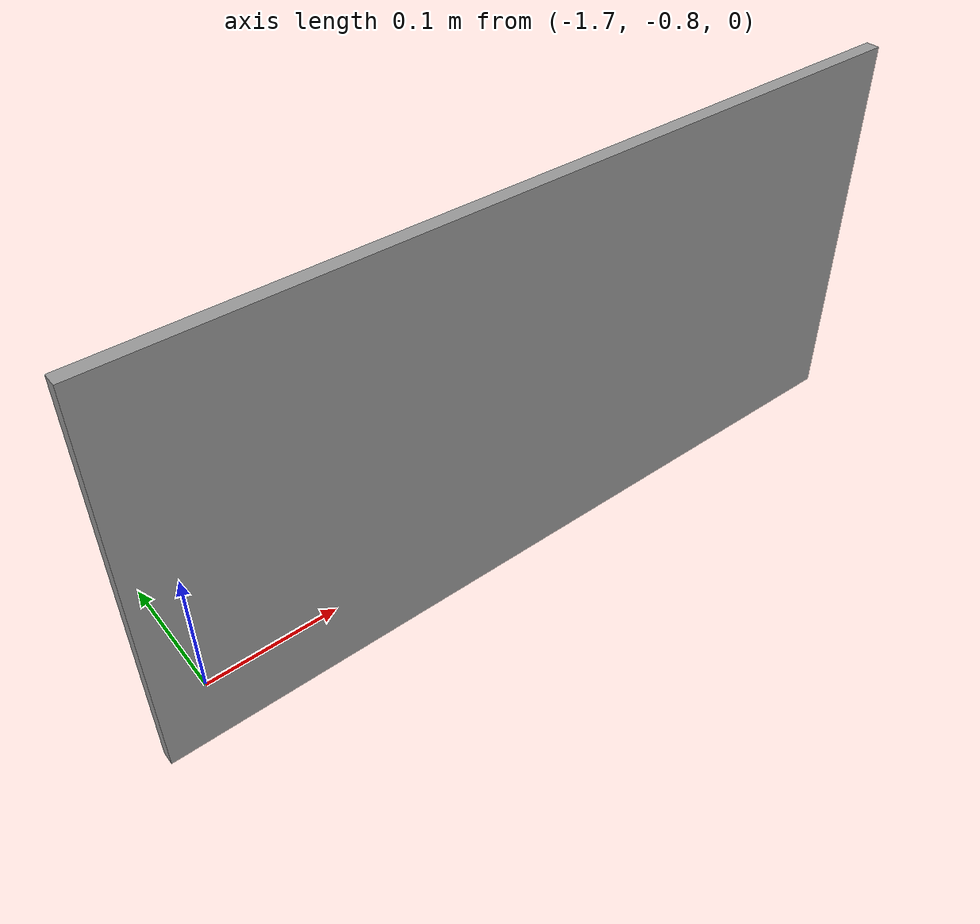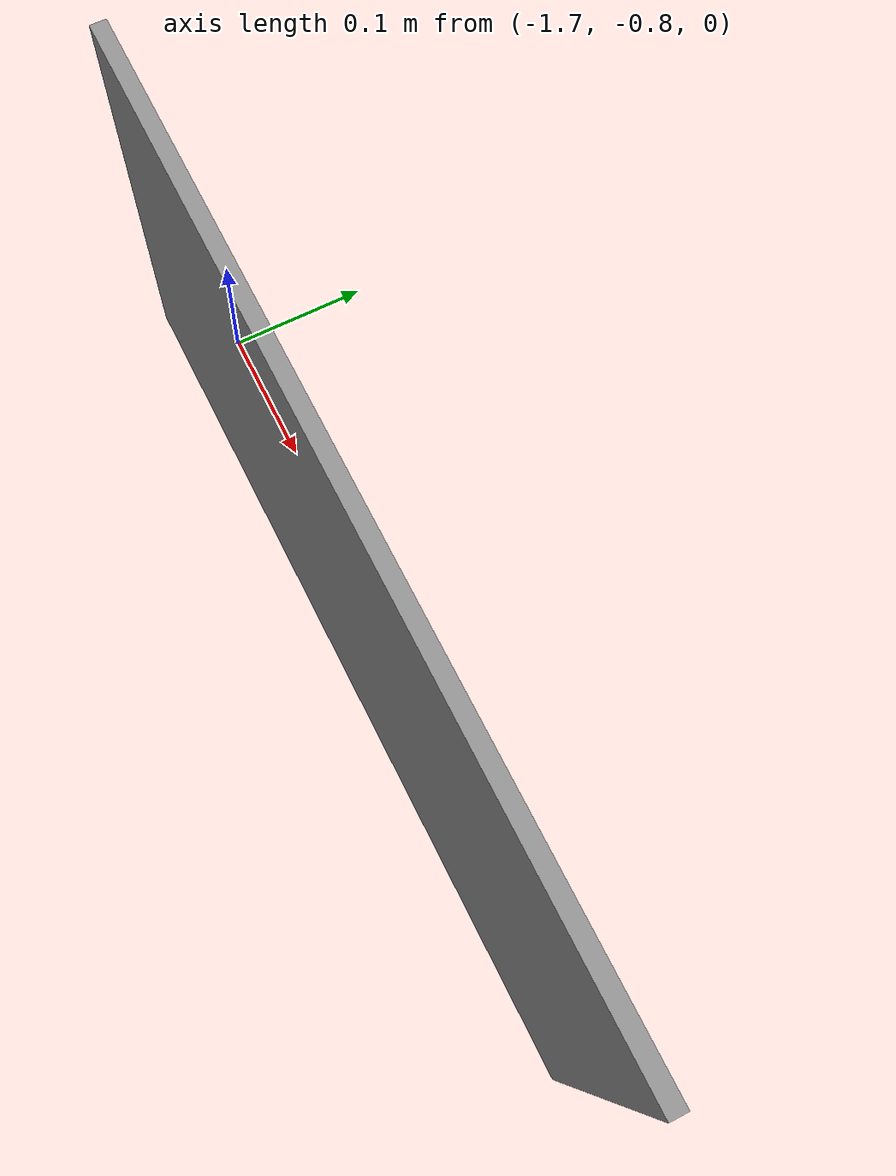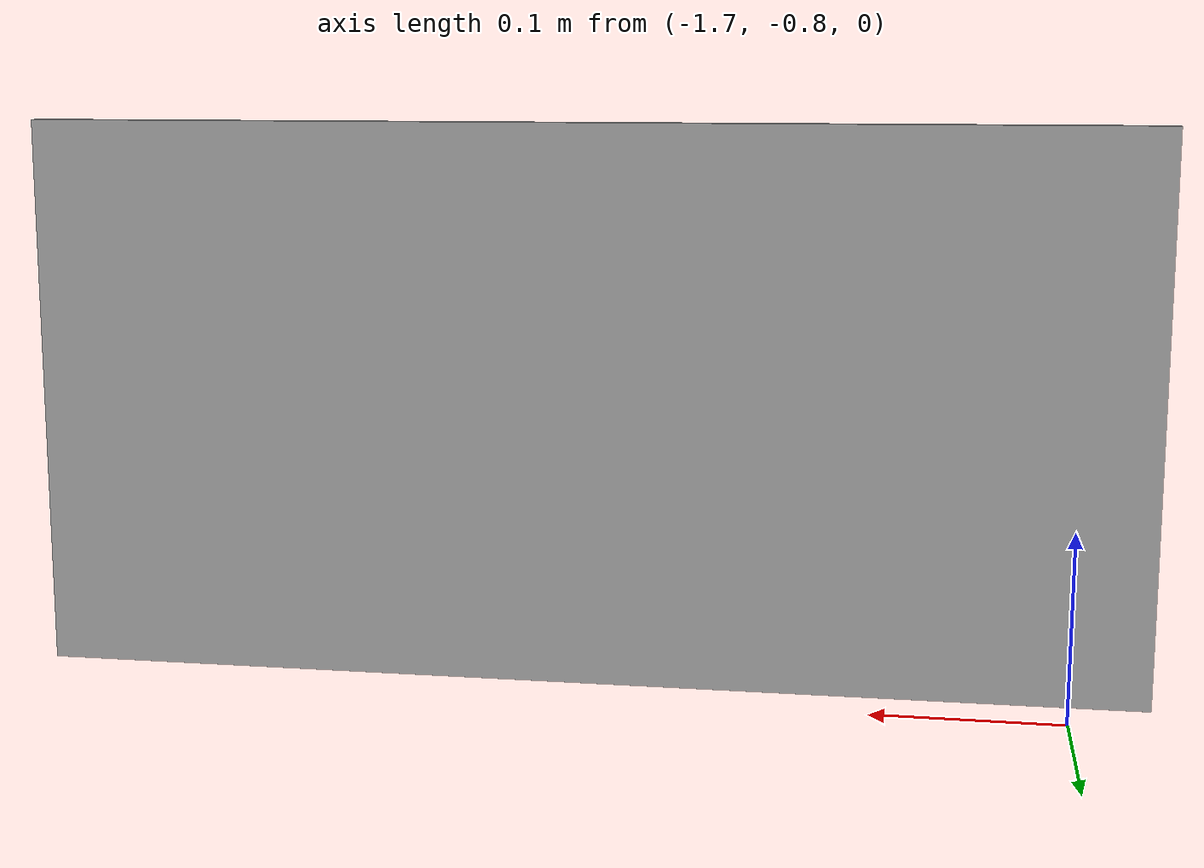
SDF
<?xml version='1.0'?>
<sdf version='1.7'>
  <model name='6'>
    <pose>-0.872065 -0.419891 0 0 -0 0</pose>
    <link name='Wall_35'>
      <collision name='Wall_35_Collision'>
        <geometry>
          <box>
            <size>0.6 0.01 0.3</size>
          </box>
        </geometry>
        <pose>0 0 0.15 0 -0 0</pose>
      </collision>
      <visual name='Wall_35_Visual'>
        <pose>0 0 0.15 0 -0 0</pose>
        <geometry>
          <box>
            <size>0.6 0.01 0.3</size>
          </box>
        </geometry>
        <material>
          <script>
            <uri>file://media/materials/scripts/gazebo.material</uri>
            <name>Gazebo/Grey</name>
          </script>
          <ambient>1 1 1 1</ambient>
        </material>
        <meta>
          <layer>0</layer>
        </meta>
      </visual>
      <pose>-0.572065 -0.414891 0 0 -0 0</pose>
    </link>
    <static>1</static>
  </model>
</sdf>
